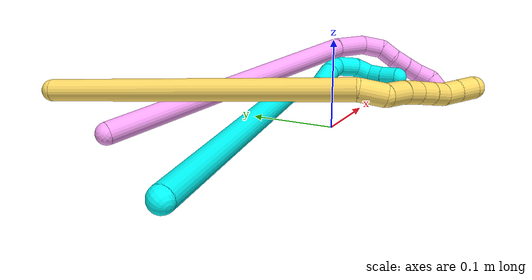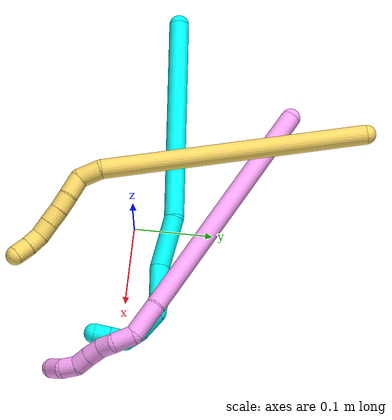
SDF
<sdf version="1.7">
 <world name="default">
  <model name="3">
   <static>0</static>
   <link name="3">
    <collision name="collision-cylinder-e_1_1_4">
     <pose>0.118374 0.015882 0.066391 -0.234802 1.0477 -0.136058</pose>
     <geometry><cylinder><radius>0.0125</radius><length>0.273294</length></cylinder></geometry>
     <surface>
      <friction><ode><mu>1.16</mu><mu2>1.16</mu2><slip1>0</slip1><slip2>0</slip2></ode></friction>
      <contact><ode><kp>1e+06</kp><kd>1</kd><max_vel>0</max_vel><min_depth>0.001</min_depth></ode></contact>
     </surface>
    </collision>
    <visual name="visual-cylinder-e_1_1_4">
     <pose>0.118374 0.015882 0.066391 -0.234802 1.0477 -0.136058</pose>
     <geometry><cylinder><radius>0.0125</radius><length>0.273294</length></cylinder></geometry>
     <material><ambient>0.003922 1 0.996078 1</ambient></material>
    </visual>
    <collision name="collision-cylinder-e_2_4_5">
     <pose>0.26892 0.038157 0.139789 -0.739651 1.2841 -0.564272</pose>
     <geometry><cylinder><radius>0.0125</radius><length>0.067083</length></cylinder></geometry>
     <surface>
      <friction><ode><mu>1.16</mu><mu2>1.16</mu2><slip1>0</slip1><slip2>0</slip2></ode></friction>
      <contact><ode><kp>1e+06</kp><kd>1</kd><max_vel>0</max_vel><min_depth>0.001</min_depth></ode></contact>
     </surface>
    </collision>
    <visual name="visual-cylinder-e_2_4_5">
     <pose>0.26892 0.038157 0.139789 -0.739651 1.2841 -0.564272</pose>
     <geometry><cylinder><radius>0.0125</radius><length>0.067083</length></cylinder></geometry>
     <material><ambient>0.003922 1 0.996078 1</ambient></material>
    </visual>
    <collision name="collision-cylinder-e_3_5_6">
     <pose>0.319259 0.043805 0.158305 0.064636 1.00513 0.035535</pose>
     <geometry><cylinder><radius>0.0125</radius><length>0.043037</length></cylinder></geometry>
     <surface>
      <friction><ode><mu>1.16</mu><mu2>1.16</mu2><slip1>0</slip1><slip2>0</slip2></ode></friction>
      <contact><ode><kp>1e+06</kp><kd>1</kd><max_vel>0</max_vel><min_depth>0.001</min_depth></ode></contact>
     </surface>
    </collision>
    <visual name="visual-cylinder-e_3_5_6">
     <pose>0.319259 0.043805 0.158305 0.064636 1.00513 0.035535</pose>
     <geometry><cylinder><radius>0.0125</radius><length>0.043037</length></cylinder></geometry>
     <material><ambient>0.003922 1 0.996078 1</ambient></material>
    </visual>
    <collision name="collision-cylinder-e_4_6_7">
     <pose>0.347805 0.042669 0.174756 0.078869 1.12515 0.049746</pose>
     <geometry><cylinder><radius>0.0125</radius><length>0.023005</length></cylinder></geometry>
     <surface>
      <friction><ode><mu>1.16</mu><mu2>1.16</mu2><slip1>0</slip1><slip2>0</slip2></ode></friction>
      <contact><ode><kp>1e+06</kp><kd>1</kd><max_vel>0</max_vel><min_depth>0.001</min_depth></ode></contact>
     </surface>
    </collision>
    <visual name="visual-cylinder-e_4_6_7">
     <pose>0.347805 0.042669 0.174756 0.078869 1.12515 0.049746</pose>
     <geometry><cylinder><radius>0.0125</radius><length>0.023005</length></cylinder></geometry>
     <material><ambient>0.003922 1 0.996078 1</ambient></material>
    </visual>
    <collision name="collision-cylinder-e_5_7_8">
     <pose>0.373436 0.043095 0.176032 -2.92246 1.32931 -2.86263</pose>
     <geometry><cylinder><radius>0.0125</radius><length>0.031415</length></cylinder></geometry>
     <surface>
      <friction><ode><mu>1.16</mu><mu2>1.16</mu2><slip1>0</slip1><slip2>0</slip2></ode></friction>
      <contact><ode><kp>1e+06</kp><kd>1</kd><max_vel>0</max_vel><min_depth>0.001</min_depth></ode></contact>
     </surface>
    </collision>
    <visual name="visual-cylinder-e_5_7_8">
     <pose>0.373436 0.043095 0.176032 -2.92246 1.32931 -2.86263</pose>
     <geometry><cylinder><radius>0.0125</radius><length>0.031415</length></cylinder></geometry>
     <material><ambient>0.003922 1 0.996078 1</ambient></material>
    </visual>
    <collision name="collision-cylinder-e_6_8_9">
     <pose>0.396771 0.046331 0.165671 -2.79489 0.848836 -2.4022</pose>
     <geometry><cylinder><radius>0.0125</radius><length>0.021542</length></cylinder></geometry>
     <surface>
      <friction><ode><mu>1.16</mu><mu2>1.16</mu2><slip1>0</slip1><slip2>0</slip2></ode></friction>
      <contact><ode><kp>1e+06</kp><kd>1</kd><max_vel>0</max_vel><min_depth>0.001</min_depth></ode></contact>
     </surface>
    </collision>
    <visual name="visual-cylinder-e_6_8_9">
     <pose>0.396771 0.046331 0.165671 -2.79489 0.848836 -2.4022</pose>
     <geometry><cylinder><radius>0.0125</radius><length>0.021542</length></cylinder></geometry>
     <material><ambient>0.003922 1 0.996078 1</ambient></material>
    </visual>
    <collision name="collision-cylinder-e_7_9_10">
     <pose>0.407721 0.045647 0.149813 2.81517 0.288011 1.44396</pose>
     <geometry><cylinder><radius>0.0125</radius><length>0.020179</length></cylinder></geometry>
     <surface>
      <friction><ode><mu>1.16</mu><mu2>1.16</mu2><slip1>0</slip1><slip2>0</slip2></ode></friction>
      <contact><ode><kp>1e+06</kp><kd>1</kd><max_vel>0</max_vel><min_depth>0.001</min_depth></ode></contact>
     </surface>
    </collision>
    <visual name="visual-cylinder-e_7_9_10">
     <pose>0.407721 0.045647 0.149813 2.81517 0.288011 1.44396</pose>
     <geometry><cylinder><radius>0.0125</radius><length>0.020179</length></cylinder></geometry>
     <material><ambient>0.003922 1 0.996078 1</ambient></material>
    </visual>
    <collision name="collision-cylinder-e_8_10_2">
     <pose>0.413901 0.038466 0.131882 2.70615 0.33013 1.29082</pose>
     <geometry><cylinder><radius>0.0125</radius><length>0.020445</length></cylinder></geometry>
     <surface>
      <friction><ode><mu>1.16</mu><mu2>1.16</mu2><slip1>0</slip1><slip2>0</slip2></ode></friction>
      <contact><ode><kp>1e+06</kp><kd>1</kd><max_vel>0</max_vel><min_depth>0.001</min_depth></ode></contact>
     </surface>
    </collision>
    <visual name="visual-cylinder-e_8_10_2">
     <pose>0.413901 0.038466 0.131882 2.70615 0.33013 1.29082</pose>
     <geometry><cylinder><radius>0.0125</radius><length>0.020445</length></cylinder></geometry>
     <material><ambient>0.003922 1 0.996078 1</ambient></material>
    </visual>
    <collision name="collision-sphere-2">
     <pose>0.417214 0.034387 0.123114 0 -0 0</pose>
     <geometry><sphere><radius>0.0125</radius></sphere></geometry>
     <surface>
      <friction><ode><mu>1.16</mu><mu2>1.16</mu2><slip1>0</slip1><slip2>0</slip2></ode></friction>
      <contact><ode><kp>1e+06</kp><kd>1</kd><max_vel>0</max_vel><min_depth>0.001</min_depth></ode></contact>
     </surface>
    </collision>
    <visual name="visual-sphere-2">
     <pose>0.417214 0.034387 0.123114 0 -0 0</pose>
     <geometry><sphere><radius>0.0125</radius></sphere></geometry>
     <material><ambient>0.003922 1 0.996078 1</ambient></material>
    </visual>
    <collision name="collision-sphere-10">
     <pose>0.410587 0.042545 0.14065 0 -0 0</pose>
     <geometry><sphere><radius>0.0125</radius></sphere></geometry>
     <surface>
      <friction><ode><mu>1.16</mu><mu2>1.16</mu2><slip1>0</slip1><slip2>0</slip2></ode></friction>
      <contact><ode><kp>1e+06</kp><kd>1</kd><max_vel>0</max_vel><min_depth>0.001</min_depth></ode></contact>
     </surface>
    </collision>
    <visual name="visual-sphere-10">
     <pose>0.410587 0.042545 0.14065 0 -0 0</pose>
     <geometry><sphere><radius>0.0125</radius></sphere></geometry>
     <material><ambient>0.003922 1 0.996078 1</ambient></material>
    </visual>
    <collision name="collision-sphere-9">
     <pose>0.404855 0.048749 0.158977 0 -0 0</pose>
     <geometry><sphere><radius>0.0125</radius></sphere></geometry>
     <surface>
      <friction><ode><mu>1.16</mu><mu2>1.16</mu2><slip1>0</slip1><slip2>0</slip2></ode></friction>
      <contact><ode><kp>1e+06</kp><kd>1</kd><max_vel>0</max_vel><min_depth>0.001</min_depth></ode></contact>
     </surface>
    </collision>
    <visual name="visual-sphere-9">
     <pose>0.404855 0.048749 0.158977 0 -0 0</pose>
     <geometry><sphere><radius>0.0125</radius></sphere></geometry>
     <material><ambient>0.003922 1 0.996078 1</ambient></material>
    </visual>
    <collision name="collision-sphere-4">
     <pose>0.236748 0.031763 0.132782 0 -0 0</pose>
     <geometry><sphere><radius>0.0125</radius></sphere></geometry>
     <surface>
      <friction><ode><mu>1.16</mu><mu2>1.16</mu2><slip1>0</slip1><slip2>0</slip2></ode></friction>
      <contact><ode><kp>1e+06</kp><kd>1</kd><max_vel>0</max_vel><min_depth>0.001</min_depth></ode></contact>
     </surface>
    </collision>
    <visual name="visual-sphere-4">
     <pose>0.236748 0.031763 0.132782 0 -0 0</pose>
     <geometry><sphere><radius>0.0125</radius></sphere></geometry>
     <material><ambient>0.003922 1 0.996078 1</ambient></material>
    </visual>
    <collision name="collision-sphere-1">
     <geometry><sphere><radius>0.0125</radius></sphere></geometry>
     <surface>
      <friction><ode><mu>1.16</mu><mu2>1.16</mu2><slip1>0</slip1><slip2>0</slip2></ode></friction>
      <contact><ode><kp>1e+06</kp><kd>1</kd><max_vel>0</max_vel><min_depth>0.001</min_depth></ode></contact>
     </surface>
    </collision>
    <visual name="visual-sphere-1">
     <geometry><sphere><radius>0.0125</radius></sphere></geometry>
     <material><ambient>0.003922 1 0.996078 1</ambient></material>
    </visual>
    <collision name="collision-sphere-8">
     <pose>0.388687 0.043912 0.172366 0 -0 0</pose>
     <geometry><sphere><radius>0.0125</radius></sphere></geometry>
     <surface>
      <friction><ode><mu>1.16</mu><mu2>1.16</mu2><slip1>0</slip1><slip2>0</slip2></ode></friction>
      <contact><ode><kp>1e+06</kp><kd>1</kd><max_vel>0</max_vel><min_depth>0.001</min_depth></ode></contact>
     </surface>
    </collision>
    <visual name="visual-sphere-8">
     <pose>0.388687 0.043912 0.172366 0 -0 0</pose>
     <geometry><sphere><radius>0.0125</radius></sphere></geometry>
     <material><ambient>0.003922 1 0.996078 1</ambient></material>
    </visual>
    <collision name="collision-sphere-5">
     <pose>0.301093 0.04455 0.146795 0 -0 0</pose>
     <geometry><sphere><radius>0.0125</radius></sphere></geometry>
     <surface>
      <friction><ode><mu>1.16</mu><mu2>1.16</mu2><slip1>0</slip1><slip2>0</slip2></ode></friction>
      <contact><ode><kp>1e+06</kp><kd>1</kd><max_vel>0</max_vel><min_depth>0.001</min_depth></ode></contact>
     </surface>
    </collision>
    <visual name="visual-sphere-5">
     <pose>0.301093 0.04455 0.146795 0 -0 0</pose>
     <geometry><sphere><radius>0.0125</radius></sphere></geometry>
     <material><ambient>0.003922 1 0.996078 1</ambient></material>
    </visual>
    <collision name="collision-sphere-6">
     <pose>0.337426 0.04306 0.169814 0 -0 0</pose>
     <geometry><sphere><radius>0.0125</radius></sphere></geometry>
     <surface>
      <friction><ode><mu>1.16</mu><mu2>1.16</mu2><slip1>0</slip1><slip2>0</slip2></ode></friction>
      <contact><ode><kp>1e+06</kp><kd>1</kd><max_vel>0</max_vel><min_depth>0.001</min_depth></ode></contact>
     </surface>
    </collision>
    <visual name="visual-sphere-6">
     <pose>0.337426 0.04306 0.169814 0 -0 0</pose>
     <geometry><sphere><radius>0.0125</radius></sphere></geometry>
     <material><ambient>0.003922 1 0.996078 1</ambient></material>
    </visual>
    <collision name="collision-sphere-7">
     <pose>0.358184 0.042279 0.179699 0 -0 0</pose>
     <geometry><sphere><radius>0.0125</radius></sphere></geometry>
     <surface>
      <friction><ode><mu>1.16</mu><mu2>1.16</mu2><slip1>0</slip1><slip2>0</slip2></ode></friction>
      <contact><ode><kp>1e+06</kp><kd>1</kd><max_vel>0</max_vel><min_depth>0.001</min_depth></ode></contact>
     </surface>
    </collision>
    <visual name="visual-sphere-7">
     <pose>0.358184 0.042279 0.179699 0 -0 0</pose>
     <geometry><sphere><radius>0.0125</radius></sphere></geometry>
     <material><ambient>0.003922 1 0.996078 1</ambient></material>
    </visual>
    <inertial>
     <pose>0.218201 0.027653 0.106347 0 -0 0</pose>
     <mass>0.5</mass>
     <inertia>
      <ixx>0.000772</ixx>
      <ixy>0</ixy>
      <ixz>0</ixz>
      <iyy>0.001623</iyy>
      <iyz>0</iyz>
      <izz>-0.001718</izz>
     </inertia>
    </inertial>
   </link>
   <pose>-0.279231 0.027365 0.012396 -1.17902 -0.015751 -0.433602</pose>
  </model>
  <model name="4">
   <static>0</static>
   <link name="4">
    <collision name="collision-cylinder-e_1_1_4">
     <pose>0.080251 -0.090545 0.108972 0.693301 0.515368 0.189831</pose>
     <geometry><cylinder><radius>0.0125</radius><length>0.325659</length></cylinder></geometry>
     <surface>
      <friction><ode><mu>1.16</mu><mu2>1.16</mu2><slip1>0</slip1><slip2>0</slip2></ode></friction>
      <contact><ode><kp>1e+06</kp><kd>1</kd><max_vel>0</max_vel><min_depth>0.001</min_depth></ode></contact>
     </surface>
    </collision>
    <visual name="visual-cylinder-e_1_1_4">
     <pose>0.080251 -0.090545 0.108972 0.693301 0.515368 0.189831</pose>
     <geometry><cylinder><radius>0.0125</radius><length>0.325659</length></cylinder></geometry>
     <material><ambient>1 0.65098 0.996078 1</ambient></material>
    </visual>
    <collision name="collision-cylinder-e_2_4_5">
     <pose>0.171633 -0.19036 0.235775 0.479428 0.505745 0.126147</pose>
     <geometry><cylinder><radius>0.0125</radius><length>0.045948</length></cylinder></geometry>
     <surface>
      <friction><ode><mu>1.16</mu><mu2>1.16</mu2><slip1>0</slip1><slip2>0</slip2></ode></friction>
      <contact><ode><kp>1e+06</kp><kd>1</kd><max_vel>0</max_vel><min_depth>0.001</min_depth></ode></contact>
     </surface>
    </collision>
    <visual name="visual-cylinder-e_2_4_5">
     <pose>0.171633 -0.19036 0.235775 0.479428 0.505745 0.126147</pose>
     <geometry><cylinder><radius>0.0125</radius><length>0.045948</length></cylinder></geometry>
     <material><ambient>1 0.65098 0.996078 1</ambient></material>
    </visual>
    <collision name="collision-cylinder-e_3_5_6">
     <pose>0.193424 -0.198002 0.261582 -0.201379 0.918788 -0.099876</pose>
     <geometry><cylinder><radius>0.0125</radius><length>0.026827</length></cylinder></geometry>
     <surface>
      <friction><ode><mu>1.16</mu><mu2>1.16</mu2><slip1>0</slip1><slip2>0</slip2></ode></friction>
      <contact><ode><kp>1e+06</kp><kd>1</kd><max_vel>0</max_vel><min_depth>0.001</min_depth></ode></contact>
     </surface>
    </collision>
    <visual name="visual-cylinder-e_3_5_6">
     <pose>0.193424 -0.198002 0.261582 -0.201379 0.918788 -0.099876</pose>
     <geometry><cylinder><radius>0.0125</radius><length>0.026827</length></cylinder></geometry>
     <material><ambient>1 0.65098 0.996078 1</ambient></material>
    </visual>
    <collision name="collision-cylinder-e_4_6_7">
     <pose>0.209735 -0.191075 0.275956 -0.691666 0.597084 -0.220863</pose>
     <geometry><cylinder><radius>0.0125</radius><length>0.020095</length></cylinder></geometry>
     <surface>
      <friction><ode><mu>1.16</mu><mu2>1.16</mu2><slip1>0</slip1><slip2>0</slip2></ode></friction>
      <contact><ode><kp>1e+06</kp><kd>1</kd><max_vel>0</max_vel><min_depth>0.001</min_depth></ode></contact>
     </surface>
    </collision>
    <visual name="visual-cylinder-e_4_6_7">
     <pose>0.209735 -0.191075 0.275956 -0.691666 0.597084 -0.220863</pose>
     <geometry><cylinder><radius>0.0125</radius><length>0.020095</length></cylinder></geometry>
     <material><ambient>1 0.65098 0.996078 1</ambient></material>
    </visual>
    <collision name="collision-cylinder-e_5_7_8">
     <pose>0.220823 -0.182543 0.290269 -0.387794 0.566667 -0.114225</pose>
     <geometry><cylinder><radius>0.0125</radius><length>0.020262</length></cylinder></geometry>
     <surface>
      <friction><ode><mu>1.16</mu><mu2>1.16</mu2><slip1>0</slip1><slip2>0</slip2></ode></friction>
      <contact><ode><kp>1e+06</kp><kd>1</kd><max_vel>0</max_vel><min_depth>0.001</min_depth></ode></contact>
     </surface>
    </collision>
    <visual name="visual-cylinder-e_5_7_8">
     <pose>0.220823 -0.182543 0.290269 -0.387794 0.566667 -0.114225</pose>
     <geometry><cylinder><radius>0.0125</radius><length>0.020262</length></cylinder></geometry>
     <material><ambient>1 0.65098 0.996078 1</ambient></material>
    </visual>
    <collision name="collision-cylinder-e_6_8_9">
     <pose>0.231326 -0.17671 0.306593 -0.299804 0.521965 -0.080631</pose>
     <geometry><cylinder><radius>0.0125</radius><length>0.020313</length></cylinder></geometry>
     <surface>
      <friction><ode><mu>1.16</mu><mu2>1.16</mu2><slip1>0</slip1><slip2>0</slip2></ode></friction>
      <contact><ode><kp>1e+06</kp><kd>1</kd><max_vel>0</max_vel><min_depth>0.001</min_depth></ode></contact>
     </surface>
    </collision>
    <visual name="visual-cylinder-e_6_8_9">
     <pose>0.231326 -0.17671 0.306593 -0.299804 0.521965 -0.080631</pose>
     <geometry><cylinder><radius>0.0125</radius><length>0.020313</length></cylinder></geometry>
     <material><ambient>1 0.65098 0.996078 1</ambient></material>
    </visual>
    <collision name="collision-cylinder-e_7_9_10">
     <pose>0.244108 -0.169785 0.320291 -0.685628 0.84634 -0.31876</pose>
     <geometry><cylinder><radius>0.0125</radius><length>0.020614</length></cylinder></geometry>
     <surface>
      <friction><ode><mu>1.16</mu><mu2>1.16</mu2><slip1>0</slip1><slip2>0</slip2></ode></friction>
      <contact><ode><kp>1e+06</kp><kd>1</kd><max_vel>0</max_vel><min_depth>0.001</min_depth></ode></contact>
     </surface>
    </collision>
    <visual name="visual-cylinder-e_7_9_10">
     <pose>0.244108 -0.169785 0.320291 -0.685628 0.84634 -0.31876</pose>
     <geometry><cylinder><radius>0.0125</radius><length>0.020614</length></cylinder></geometry>
     <material><ambient>1 0.65098 0.996078 1</ambient></material>
    </visual>
    <collision name="collision-cylinder-e_8_10_2">
     <pose>0.256373 -0.157304 0.329534 -1.11923 0.464882 -0.294424</pose>
     <geometry><cylinder><radius>0.0125</radius><length>0.020282</length></cylinder></geometry>
     <surface>
      <friction><ode><mu>1.16</mu><mu2>1.16</mu2><slip1>0</slip1><slip2>0</slip2></ode></friction>
      <contact><ode><kp>1e+06</kp><kd>1</kd><max_vel>0</max_vel><min_depth>0.001</min_depth></ode></contact>
     </surface>
    </collision>
    <visual name="visual-cylinder-e_8_10_2">
     <pose>0.256373 -0.157304 0.329534 -1.11923 0.464882 -0.294424</pose>
     <geometry><cylinder><radius>0.0125</radius><length>0.020282</length></cylinder></geometry>
     <material><ambient>1 0.65098 0.996078 1</ambient></material>
    </visual>
    <collision name="collision-sphere-2">
     <pose>0.260919 -0.149148 0.33349 0 -0 0</pose>
     <geometry><sphere><radius>0.0125</radius></sphere></geometry>
     <surface>
      <friction><ode><mu>1.16</mu><mu2>1.16</mu2><slip1>0</slip1><slip2>0</slip2></ode></friction>
      <contact><ode><kp>1e+06</kp><kd>1</kd><max_vel>0</max_vel><min_depth>0.001</min_depth></ode></contact>
     </surface>
    </collision>
    <visual name="visual-sphere-2">
     <pose>0.260919 -0.149148 0.33349 0 -0 0</pose>
     <geometry><sphere><radius>0.0125</radius></sphere></geometry>
     <material><ambient>1 0.65098 0.996078 1</ambient></material>
    </visual>
    <collision name="collision-sphere-10">
     <pose>0.251826 -0.16546 0.325578 0 -0 0</pose>
     <geometry><sphere><radius>0.0125</radius></sphere></geometry>
     <surface>
      <friction><ode><mu>1.16</mu><mu2>1.16</mu2><slip1>0</slip1><slip2>0</slip2></ode></friction>
      <contact><ode><kp>1e+06</kp><kd>1</kd><max_vel>0</max_vel><min_depth>0.001</min_depth></ode></contact>
     </surface>
    </collision>
    <visual name="visual-sphere-10">
     <pose>0.251826 -0.16546 0.325578 0 -0 0</pose>
     <geometry><sphere><radius>0.0125</radius></sphere></geometry>
     <material><ambient>1 0.65098 0.996078 1</ambient></material>
    </visual>
    <collision name="collision-sphere-9">
     <pose>0.236389 -0.17411 0.315004 0 -0 0</pose>
     <geometry><sphere><radius>0.0125</radius></sphere></geometry>
     <surface>
      <friction><ode><mu>1.16</mu><mu2>1.16</mu2><slip1>0</slip1><slip2>0</slip2></ode></friction>
      <contact><ode><kp>1e+06</kp><kd>1</kd><max_vel>0</max_vel><min_depth>0.001</min_depth></ode></contact>
     </surface>
    </collision>
    <visual name="visual-sphere-9">
     <pose>0.236389 -0.17411 0.315004 0 -0 0</pose>
     <geometry><sphere><radius>0.0125</radius></sphere></geometry>
     <material><ambient>1 0.65098 0.996078 1</ambient></material>
    </visual>
    <collision name="collision-sphere-4">
     <pose>0.160503 -0.181089 0.217943 0 -0 0</pose>
     <geometry><sphere><radius>0.0125</radius></sphere></geometry>
     <surface>
      <friction><ode><mu>1.16</mu><mu2>1.16</mu2><slip1>0</slip1><slip2>0</slip2></ode></friction>
      <contact><ode><kp>1e+06</kp><kd>1</kd><max_vel>0</max_vel><min_depth>0.001</min_depth></ode></contact>
     </surface>
    </collision>
    <visual name="visual-sphere-4">
     <pose>0.160503 -0.181089 0.217943 0 -0 0</pose>
     <geometry><sphere><radius>0.0125</radius></sphere></geometry>
     <material><ambient>1 0.65098 0.996078 1</ambient></material>
    </visual>
    <collision name="collision-sphere-1">
     <geometry><sphere><radius>0.0125</radius></sphere></geometry>
     <surface>
      <friction><ode><mu>1.16</mu><mu2>1.16</mu2><slip1>0</slip1><slip2>0</slip2></ode></friction>
      <contact><ode><kp>1e+06</kp><kd>1</kd><max_vel>0</max_vel><min_depth>0.001</min_depth></ode></contact>
     </surface>
    </collision>
    <visual name="visual-sphere-1">
     <geometry><sphere><radius>0.0125</radius></sphere></geometry>
     <material><ambient>1 0.65098 0.996078 1</ambient></material>
    </visual>
    <collision name="collision-sphere-8">
     <pose>0.226262 -0.17931 0.298182 0 -0 0</pose>
     <geometry><sphere><radius>0.0125</radius></sphere></geometry>
     <surface>
      <friction><ode><mu>1.16</mu><mu2>1.16</mu2><slip1>0</slip1><slip2>0</slip2></ode></friction>
      <contact><ode><kp>1e+06</kp><kd>1</kd><max_vel>0</max_vel><min_depth>0.001</min_depth></ode></contact>
     </surface>
    </collision>
    <visual name="visual-sphere-8">
     <pose>0.226262 -0.17931 0.298182 0 -0 0</pose>
     <geometry><sphere><radius>0.0125</radius></sphere></geometry>
     <material><ambient>1 0.65098 0.996078 1</ambient></material>
    </visual>
    <collision name="collision-sphere-5">
     <pose>0.182763 -0.19963 0.253607 0 -0 0</pose>
     <geometry><sphere><radius>0.0125</radius></sphere></geometry>
     <surface>
      <friction><ode><mu>1.16</mu><mu2>1.16</mu2><slip1>0</slip1><slip2>0</slip2></ode></friction>
      <contact><ode><kp>1e+06</kp><kd>1</kd><max_vel>0</max_vel><min_depth>0.001</min_depth></ode></contact>
     </surface>
    </collision>
    <visual name="visual-sphere-5">
     <pose>0.182763 -0.19963 0.253607 0 -0 0</pose>
     <geometry><sphere><radius>0.0125</radius></sphere></geometry>
     <material><ambient>1 0.65098 0.996078 1</ambient></material>
    </visual>
    <collision name="collision-sphere-6">
     <pose>0.204086 -0.196374 0.269556 0 -0 0</pose>
     <geometry><sphere><radius>0.0125</radius></sphere></geometry>
     <surface>
      <friction><ode><mu>1.16</mu><mu2>1.16</mu2><slip1>0</slip1><slip2>0</slip2></ode></friction>
      <contact><ode><kp>1e+06</kp><kd>1</kd><max_vel>0</max_vel><min_depth>0.001</min_depth></ode></contact>
     </surface>
    </collision>
    <visual name="visual-sphere-6">
     <pose>0.204086 -0.196374 0.269556 0 -0 0</pose>
     <geometry><sphere><radius>0.0125</radius></sphere></geometry>
     <material><ambient>1 0.65098 0.996078 1</ambient></material>
    </visual>
    <collision name="collision-sphere-7">
     <pose>0.215384 -0.185775 0.282356 0 -0 0</pose>
     <geometry><sphere><radius>0.0125</radius></sphere></geometry>
     <surface>
      <friction><ode><mu>1.16</mu><mu2>1.16</mu2><slip1>0</slip1><slip2>0</slip2></ode></friction>
      <contact><ode><kp>1e+06</kp><kd>1</kd><max_vel>0</max_vel><min_depth>0.001</min_depth></ode></contact>
     </surface>
    </collision>
    <visual name="visual-sphere-7">
     <pose>0.215384 -0.185775 0.282356 0 -0 0</pose>
     <geometry><sphere><radius>0.0125</radius></sphere></geometry>
     <material><ambient>1 0.65098 0.996078 1</ambient></material>
    </visual>
    <inertial>
     <pose>0.125659 -0.122727 0.168558 0 -0 0</pose>
     <mass>0.5</mass>
     <inertia>
      <ixx>0.002981</ixx>
      <ixy>0</ixy>
      <ixz>0</ixz>
      <iyy>0.002836</iyy>
      <iyz>0</iyz>
      <izz>0.000198</izz>
     </inertia>
    </inertial>
   </link>
   <pose>-0.166555 0.183243 0.011486 -2.21535 -0.302723 -1.54488</pose>
  </model>
  <model name="5">
   <static>0</static>
   <link name="5">
    <collision name="collision-cylinder-e_1_1_4">
     <pose>0.090906 -0.127042 0.068123 1.07859 0.56263 0.342503</pose>
     <geometry><cylinder><radius>0.0125</radius><length>0.340848</length></cylinder></geometry>
     <surface>
      <friction><ode><mu>1.16</mu><mu2>1.16</mu2><slip1>0</slip1><slip2>0</slip2></ode></friction>
      <contact><ode><kp>1e+06</kp><kd>1</kd><max_vel>0</max_vel><min_depth>0.001</min_depth></ode></contact>
     </surface>
    </collision>
    <visual name="visual-cylinder-e_1_1_4">
     <pose>0.090906 -0.127042 0.068123 1.07859 0.56263 0.342503</pose>
     <geometry><cylinder><radius>0.0125</radius><length>0.340848</length></cylinder></geometry>
     <material><ambient>1 0.858824 0.4 1</ambient></material>
    </visual>
    <collision name="collision-cylinder-e_2_4_5">
     <pose>0.185406 -0.26644 0.143664 1.03018 0.244325 0.138773</pose>
     <geometry><cylinder><radius>0.0125</radius><length>0.029706</length></cylinder></geometry>
     <surface>
      <friction><ode><mu>1.16</mu><mu2>1.16</mu2><slip1>0</slip1><slip2>0</slip2></ode></friction>
      <contact><ode><kp>1e+06</kp><kd>1</kd><max_vel>0</max_vel><min_depth>0.001</min_depth></ode></contact>
     </surface>
    </collision>
    <visual name="visual-cylinder-e_2_4_5">
     <pose>0.185406 -0.26644 0.143664 1.03018 0.244325 0.138773</pose>
     <geometry><cylinder><radius>0.0125</radius><length>0.029706</length></cylinder></geometry>
     <material><ambient>1 0.858824 0.4 1</ambient></material>
    </visual>
    <collision name="collision-cylinder-e_3_5_6">
     <pose>0.186772 -0.292037 0.150668 1.60199 -0.166509 -0.17176</pose>
     <geometry><cylinder><radius>0.0125</radius><length>0.026865</length></cylinder></geometry>
     <surface>
      <friction><ode><mu>1.16</mu><mu2>1.16</mu2><slip1>0</slip1><slip2>0</slip2></ode></friction>
      <contact><ode><kp>1e+06</kp><kd>1</kd><max_vel>0</max_vel><min_depth>0.001</min_depth></ode></contact>
     </surface>
    </collision>
    <visual name="visual-cylinder-e_3_5_6">
     <pose>0.186772 -0.292037 0.150668 1.60199 -0.166509 -0.17176</pose>
     <geometry><cylinder><radius>0.0125</radius><length>0.026865</length></cylinder></geometry>
     <material><ambient>1 0.858824 0.4 1</ambient></material>
    </visual>
    <collision name="collision-cylinder-e_4_6_7">
     <pose>0.182294 -0.315737 0.151302 1.47098 -0.211045 -0.191093</pose>
     <geometry><cylinder><radius>0.0125</radius><length>0.021501</length></cylinder></geometry>
     <surface>
      <friction><ode><mu>1.16</mu><mu2>1.16</mu2><slip1>0</slip1><slip2>0</slip2></ode></friction>
      <contact><ode><kp>1e+06</kp><kd>1</kd><max_vel>0</max_vel><min_depth>0.001</min_depth></ode></contact>
     </surface>
    </collision>
    <visual name="visual-cylinder-e_4_6_7">
     <pose>0.182294 -0.315737 0.151302 1.47098 -0.211045 -0.191093</pose>
     <geometry><cylinder><radius>0.0125</radius><length>0.021501</length></cylinder></geometry>
     <material><ambient>1 0.858824 0.4 1</ambient></material>
    </visual>
    <collision name="collision-cylinder-e_5_7_8">
     <pose>0.178365 -0.33643 0.153948 1.41585 -0.160562 -0.137508</pose>
     <geometry><cylinder><radius>0.0125</radius><length>0.020985</length></cylinder></geometry>
     <surface>
      <friction><ode><mu>1.16</mu><mu2>1.16</mu2><slip1>0</slip1><slip2>0</slip2></ode></friction>
      <contact><ode><kp>1e+06</kp><kd>1</kd><max_vel>0</max_vel><min_depth>0.001</min_depth></ode></contact>
     </surface>
    </collision>
    <visual name="visual-cylinder-e_5_7_8">
     <pose>0.178365 -0.33643 0.153948 1.41585 -0.160562 -0.137508</pose>
     <geometry><cylinder><radius>0.0125</radius><length>0.020985</length></cylinder></geometry>
     <material><ambient>1 0.858824 0.4 1</ambient></material>
    </visual>
    <collision name="collision-cylinder-e_6_8_9">
     <pose>0.174816 -0.356389 0.156984 1.42408 -0.188044 -0.162419</pose>
     <geometry><cylinder><radius>0.0125</radius><length>0.020014</length></cylinder></geometry>
     <surface>
      <friction><ode><mu>1.16</mu><mu2>1.16</mu2><slip1>0</slip1><slip2>0</slip2></ode></friction>
      <contact><ode><kp>1e+06</kp><kd>1</kd><max_vel>0</max_vel><min_depth>0.001</min_depth></ode></contact>
     </surface>
    </collision>
    <visual name="visual-cylinder-e_6_8_9">
     <pose>0.174816 -0.356389 0.156984 1.42408 -0.188044 -0.162419</pose>
     <geometry><cylinder><radius>0.0125</radius><length>0.020014</length></cylinder></geometry>
     <material><ambient>1 0.858824 0.4 1</ambient></material>
    </visual>
    <collision name="collision-cylinder-e_7_9_10">
     <pose>0.173988 -0.376093 0.158716 1.54123 0.103989 0.100964</pose>
     <geometry><cylinder><radius>0.0125</radius><length>0.020075</length></cylinder></geometry>
     <surface>
      <friction><ode><mu>1.16</mu><mu2>1.16</mu2><slip1>0</slip1><slip2>0</slip2></ode></friction>
      <contact><ode><kp>1e+06</kp><kd>1</kd><max_vel>0</max_vel><min_depth>0.001</min_depth></ode></contact>
     </surface>
    </collision>
    <visual name="visual-cylinder-e_7_9_10">
     <pose>0.173988 -0.376093 0.158716 1.54123 0.103989 0.100964</pose>
     <geometry><cylinder><radius>0.0125</radius><length>0.020075</length></cylinder></geometry>
     <material><ambient>1 0.858824 0.4 1</ambient></material>
    </visual>
    <collision name="collision-cylinder-e_8_10_2">
     <pose>0.177173 -0.395818 0.159698 1.50038 0.215994 0.201399</pose>
     <geometry><cylinder><radius>0.0125</radius><length>0.020005</length></cylinder></geometry>
     <surface>
      <friction><ode><mu>1.16</mu><mu2>1.16</mu2><slip1>0</slip1><slip2>0</slip2></ode></friction>
      <contact><ode><kp>1e+06</kp><kd>1</kd><max_vel>0</max_vel><min_depth>0.001</min_depth></ode></contact>
     </surface>
    </collision>
    <visual name="visual-cylinder-e_8_10_2">
     <pose>0.177173 -0.395818 0.159698 1.50038 0.215994 0.201399</pose>
     <geometry><cylinder><radius>0.0125</radius><length>0.020005</length></cylinder></geometry>
     <material><ambient>1 0.858824 0.4 1</ambient></material>
    </visual>
    <collision name="collision-sphere-2">
     <pose>0.179317 -0.405564 0.160386 0 -0 0</pose>
     <geometry><sphere><radius>0.0125</radius></sphere></geometry>
     <surface>
      <friction><ode><mu>1.16</mu><mu2>1.16</mu2><slip1>0</slip1><slip2>0</slip2></ode></friction>
      <contact><ode><kp>1e+06</kp><kd>1</kd><max_vel>0</max_vel><min_depth>0.001</min_depth></ode></contact>
     </surface>
    </collision>
    <visual name="visual-sphere-2">
     <pose>0.179317 -0.405564 0.160386 0 -0 0</pose>
     <geometry><sphere><radius>0.0125</radius></sphere></geometry>
     <material><ambient>1 0.858824 0.4 1</ambient></material>
    </visual>
    <collision name="collision-sphere-10">
     <pose>0.17503 -0.386072 0.159011 0 -0 0</pose>
     <geometry><sphere><radius>0.0125</radius></sphere></geometry>
     <surface>
      <friction><ode><mu>1.16</mu><mu2>1.16</mu2><slip1>0</slip1><slip2>0</slip2></ode></friction>
      <contact><ode><kp>1e+06</kp><kd>1</kd><max_vel>0</max_vel><min_depth>0.001</min_depth></ode></contact>
     </surface>
    </collision>
    <visual name="visual-sphere-10">
     <pose>0.17503 -0.386072 0.159011 0 -0 0</pose>
     <geometry><sphere><radius>0.0125</radius></sphere></geometry>
     <material><ambient>1 0.858824 0.4 1</ambient></material>
    </visual>
    <collision name="collision-sphere-9">
     <pose>0.172946 -0.366114 0.158421 0 -0 0</pose>
     <geometry><sphere><radius>0.0125</radius></sphere></geometry>
     <surface>
      <friction><ode><mu>1.16</mu><mu2>1.16</mu2><slip1>0</slip1><slip2>0</slip2></ode></friction>
      <contact><ode><kp>1e+06</kp><kd>1</kd><max_vel>0</max_vel><min_depth>0.001</min_depth></ode></contact>
     </surface>
    </collision>
    <visual name="visual-sphere-9">
     <pose>0.172946 -0.366114 0.158421 0 -0 0</pose>
     <geometry><sphere><radius>0.0125</radius></sphere></geometry>
     <material><ambient>1 0.858824 0.4 1</ambient></material>
    </visual>
    <collision name="collision-sphere-4">
     <pose>0.181813 -0.254084 0.136247 0 -0 0</pose>
     <geometry><sphere><radius>0.0125</radius></sphere></geometry>
     <surface>
      <friction><ode><mu>1.16</mu><mu2>1.16</mu2><slip1>0</slip1><slip2>0</slip2></ode></friction>
      <contact><ode><kp>1e+06</kp><kd>1</kd><max_vel>0</max_vel><min_depth>0.001</min_depth></ode></contact>
     </surface>
    </collision>
    <visual name="visual-sphere-4">
     <pose>0.181813 -0.254084 0.136247 0 -0 0</pose>
     <geometry><sphere><radius>0.0125</radius></sphere></geometry>
     <material><ambient>1 0.858824 0.4 1</ambient></material>
    </visual>
    <collision name="collision-sphere-1">
     <geometry><sphere><radius>0.0125</radius></sphere></geometry>
     <surface>
      <friction><ode><mu>1.16</mu><mu2>1.16</mu2><slip1>0</slip1><slip2>0</slip2></ode></friction>
      <contact><ode><kp>1e+06</kp><kd>1</kd><max_vel>0</max_vel><min_depth>0.001</min_depth></ode></contact>
     </surface>
    </collision>
    <visual name="visual-sphere-1">
     <geometry><sphere><radius>0.0125</radius></sphere></geometry>
     <material><ambient>1 0.858824 0.4 1</ambient></material>
    </visual>
    <collision name="collision-sphere-8">
     <pose>0.176687 -0.346664 0.155547 0 -0 0</pose>
     <geometry><sphere><radius>0.0125</radius></sphere></geometry>
     <surface>
      <friction><ode><mu>1.16</mu><mu2>1.16</mu2><slip1>0</slip1><slip2>0</slip2></ode></friction>
      <contact><ode><kp>1e+06</kp><kd>1</kd><max_vel>0</max_vel><min_depth>0.001</min_depth></ode></contact>
     </surface>
    </collision>
    <visual name="visual-sphere-8">
     <pose>0.176687 -0.346664 0.155547 0 -0 0</pose>
     <geometry><sphere><radius>0.0125</radius></sphere></geometry>
     <material><ambient>1 0.858824 0.4 1</ambient></material>
    </visual>
    <collision name="collision-sphere-5">
     <pose>0.188999 -0.278797 0.151081 0 -0 0</pose>
     <geometry><sphere><radius>0.0125</radius></sphere></geometry>
     <surface>
      <friction><ode><mu>1.16</mu><mu2>1.16</mu2><slip1>0</slip1><slip2>0</slip2></ode></friction>
      <contact><ode><kp>1e+06</kp><kd>1</kd><max_vel>0</max_vel><min_depth>0.001</min_depth></ode></contact>
     </surface>
    </collision>
    <visual name="visual-sphere-5">
     <pose>0.188999 -0.278797 0.151081 0 -0 0</pose>
     <geometry><sphere><radius>0.0125</radius></sphere></geometry>
     <material><ambient>1 0.858824 0.4 1</ambient></material>
    </visual>
    <collision name="collision-sphere-6">
     <pose>0.184546 -0.305277 0.150254 0 -0 0</pose>
     <geometry><sphere><radius>0.0125</radius></sphere></geometry>
     <surface>
      <friction><ode><mu>1.16</mu><mu2>1.16</mu2><slip1>0</slip1><slip2>0</slip2></ode></friction>
      <contact><ode><kp>1e+06</kp><kd>1</kd><max_vel>0</max_vel><min_depth>0.001</min_depth></ode></contact>
     </surface>
    </collision>
    <visual name="visual-sphere-6">
     <pose>0.184546 -0.305277 0.150254 0 -0 0</pose>
     <geometry><sphere><radius>0.0125</radius></sphere></geometry>
     <material><ambient>1 0.858824 0.4 1</ambient></material>
    </visual>
    <collision name="collision-sphere-7">
     <pose>0.180042 -0.326197 0.15235 0 -0 0</pose>
     <geometry><sphere><radius>0.0125</radius></sphere></geometry>
     <surface>
      <friction><ode><mu>1.16</mu><mu2>1.16</mu2><slip1>0</slip1><slip2>0</slip2></ode></friction>
      <contact><ode><kp>1e+06</kp><kd>1</kd><max_vel>0</max_vel><min_depth>0.001</min_depth></ode></contact>
     </surface>
    </collision>
    <visual name="visual-sphere-7">
     <pose>0.180042 -0.326197 0.15235 0 -0 0</pose>
     <geometry><sphere><radius>0.0125</radius></sphere></geometry>
     <material><ambient>1 0.858824 0.4 1</ambient></material>
    </visual>
    <inertial>
     <pose>0.119418 -0.191025 0.095084 0 -0 0</pose>
     <mass>0.5</mass>
     <inertia>
      <ixx>0.003608</ixx>
      <ixy>0</ixy>
      <ixz>0</ixz>
      <iyy>0.00291</iyy>
      <iyz>0</iyz>
      <izz>0.000728</izz>
     </inertia>
    </inertial>
   </link>
   <pose>-0.143241 0.281464 0.04254 -3.06909 -0.653265 -2.19277</pose>
  </model>
 </world>
</sdf>
